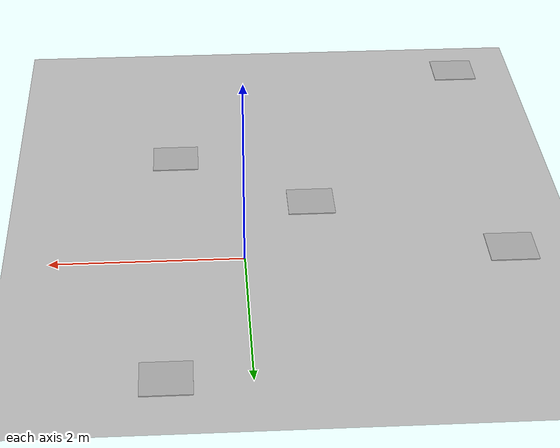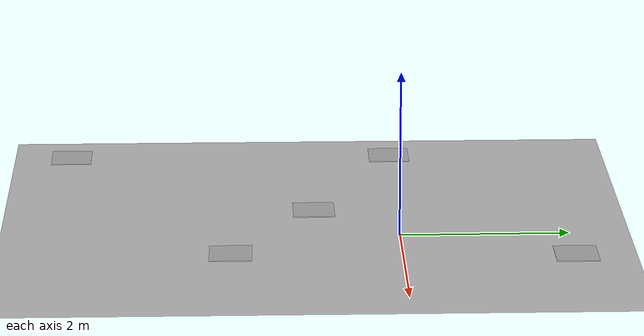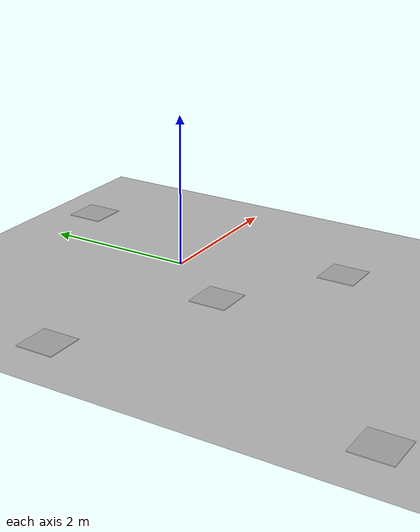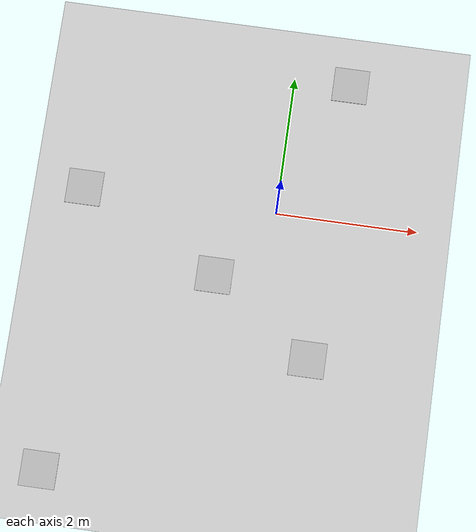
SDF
<sdf version="1.4">
 <world name="default">
  <light name="sun" type="directional">
   <pose>0 0 10 0 -0 0</pose>
   <diffuse>0.8 0.8 0.8 1</diffuse>
   <specular>0.2 0.2 0.2 1</specular>
   <attenuation>
    <range>1000</range>
    <constant>0.9</constant>
    <linear>0.01</linear>
    <quadratic>0.001</quadratic>
   </attenuation>
   <direction>-0.5 0.1 -0.9</direction>
  </light>
  <model name="ground_plane">
   <static>1</static>
   <link name="link">
    <collision name="collision">
     <geometry><plane><normal>0 0 1</normal><size>100 100</size></plane></geometry>
     <surface><friction><ode><mu>100</mu><mu2>50</mu2></ode></friction></surface>
    </collision>
    <visual name="visual">
     <cast_shadows>0</cast_shadows>
     <geometry><plane><normal>0 0 1</normal><size>100 100</size></plane></geometry>
     <material>
      <script><uri>file://media/materials/scripts/gazebo.material</uri><name>Gazebo/Grey</name></script>
     </material>
    </visual>
    <velocity_decay><linear>0</linear><angular>0</angular></velocity_decay>
   </link>
   <link name="camera_link">
    <pose>0 0 10.1 0 1.57 0</pose>
    <inertial>
     <mass>0.1</mass>
     <inertia><ixx>1</ixx><ixy>0</ixy><ixz>0</ixz><iyy>1</iyy><iyz>0</iyz><izz>1</izz></inertia>
    </inertial>
    <collision name="collision"><geometry><box><size>0.1 0.1 0.1</size></box></geometry></collision>
    <visual name="visual"><geometry><box><size>0.1 0.1 0.1</size></box></geometry></visual>
    <sensor name="camera" type="camera">
     <camera name="main_camera">
      <horizontal_fov>1.047</horizontal_fov>
      <image><width>640</width><height>480</height></image>
      <clip><near>0.1</near><far>100</far></clip>
     </camera>
     <plugin name="camera_control" filename="libgazebo_ros_camera.so">
      <cameraName>/main_camera</cameraName>
      <alwaysOn>true</alwaysOn>
      <updateRate>60</updateRate>
      <imageTopicName>/main/image_raw</imageTopicName>
      <cameraInfoTopicName>/main/camera_info</cameraInfoTopicName>
      <frameName>main_camera</frameName>
     </plugin>
     <always_on>1</always_on>
     <update_rate>30</update_rate>
     <visualize>0</visualize>
    </sensor>
    <velocity_decay><linear>0</linear><angular>0</angular></velocity_decay>
   </link>
   <joint name="arena_camera_link" type="revolute">
    <child>camera_link</child>
    <parent>link</parent>
    <axis><xyz>1 1 0</xyz><limit><lower>0</lower><upper>0</upper></limit></axis>
   </joint>
  </model>
  <physics type="ode">
   <max_step_size>0.001</max_step_size>
   <real_time_factor>1</real_time_factor>
   <real_time_update_rate>1000</real_time_update_rate>
   <gravity>0 0 -9.8</gravity>
  </physics>
  <scene><ambient>0.4 0.4 0.4 1</ambient><background>0.7 0.7 0.7 1</background><shadows>1</shadows></scene>
  <spherical_coordinates>
   <surface_model>EARTH_WGS84</surface_model>
   <latitude_deg>0</latitude_deg>
   <longitude_deg>0</longitude_deg>
   <elevation>0</elevation>
   <heading_deg>0</heading_deg>
  </spherical_coordinates>
  <model name="Marker0">
   <link name="link">
    <pose>0 0 0.4 0 1.57 0</pose>
    <inertial>
     <pose>0.4 0 0.25 0 -0 0</pose>
     <mass>1.5</mass>
     <inertia><ixx>1</ixx><ixy>0</ixy><ixz>0</ixz><iyy>1</iyy><iyz>0</iyz><izz>1</izz></inertia>
    </inertial>
    <collision name="collision">
     <pose>0 0 0.25 0 -0 0</pose>
     <geometry><box><size>0.1 0.5 0.5</size></box></geometry>
    </collision>
    <visual name="visual"><geometry><mesh><uri>model://marker0/meshes/Marker0.dae</uri></mesh></geometry></visual>
    <velocity_decay><linear>0</linear><angular>0</angular></velocity_decay>
   </link>
   <pose>0.44601 -2 -0.35 0 0.000796 0</pose>
   <static>0</static>
  </model>
  <model name="Marker0_0">
   <link name="link">
    <pose>0 0 0.4 0 1.57 0</pose>
    <inertial>
     <pose>0.4 0 0.25 0 -0 0</pose>
     <mass>1.5</mass>
     <inertia><ixx>1</ixx><ixy>0</ixy><ixz>0</ixz><iyy>1</iyy><iyz>0</iyz><izz>1</izz></inertia>
    </inertial>
    <collision name="collision">
     <pose>0 0 0.25 0 -0 0</pose>
     <geometry><box><size>0.1 0.5 0.5</size></box></geometry>
    </collision>
    <visual name="visual"><geometry><mesh><uri>model://marker0/meshes/Marker0.dae</uri></mesh></geometry></visual>
    <velocity_decay><linear>0</linear><angular>0</angular></velocity_decay>
   </link>
   <pose>-3.00028 0 -0.35 0 0.000796 0</pose>
   <static>0</static>
  </model>
  <model name="Marker0_1">
   <link name="link">
    <pose>0 0 0.4 0 1.57 0</pose>
    <inertial>
     <pose>0.4 0 0.25 0 -0 0</pose>
     <mass>1.5</mass>
     <inertia><ixx>1</ixx><ixy>0</ixy><ixz>0</ixz><iyy>1</iyy><iyz>0</iyz><izz>1</izz></inertia>
    </inertial>
    <collision name="collision">
     <pose>0 0 0.25 0 -0 0</pose>
     <geometry><box><size>0.1 0.5 0.5</size></box></geometry>
    </collision>
    <visual name="visual"><geometry><mesh><uri>model://marker0/meshes/Marker0.dae</uri></mesh></geometry></visual>
    <velocity_decay><linear>0</linear><angular>0</angular></velocity_decay>
   </link>
   <pose>-3.00028 -4 -0.35 0 0.000796 0</pose>
   <static>0</static>
  </model>
  <model name="Marker0_2">
   <link name="link">
    <pose>0 0 0.4 0 1.57 0</pose>
    <inertial>
     <pose>0.4 0 0.25 0 -0 0</pose>
     <mass>1.5</mass>
     <inertia><ixx>1</ixx><ixy>0</ixy><ixz>0</ixz><iyy>1</iyy><iyz>0</iyz><izz>1</izz></inertia>
    </inertial>
    <collision name="collision">
     <pose>0 0 0.25 0 -0 0</pose>
     <geometry><box><size>0.1 0.5 0.5</size></box></geometry>
    </collision>
    <visual name="visual"><geometry><mesh><uri>model://marker0/meshes/Marker0.dae</uri></mesh></geometry></visual>
    <velocity_decay><linear>0</linear><angular>0</angular></velocity_decay>
   </link>
   <pose>0.556114 2 -0.35 0 0.000796 0</pose>
   <static>0</static>
  </model>
  <model name="Marker0_3">
   <link name="link">
    <pose>0 0 0.4 0 1.57 0</pose>
    <inertial>
     <pose>0.4 0 0.25 0 -0 0</pose>
     <mass>1.5</mass>
     <inertia><ixx>1</ixx><ixy>0</ixy><ixz>0</ixz><iyy>1</iyy><iyz>0</iyz><izz>1</izz></inertia>
    </inertial>
    <collision name="collision">
     <pose>0 0 0.25 0 -0 0</pose>
     <geometry><box><size>0.1 0.5 0.5</size></box></geometry>
    </collision>
    <visual name="visual"><geometry><mesh><uri>model://marker0/meshes/Marker0.dae</uri></mesh></geometry></visual>
    <velocity_decay><linear>0</linear><angular>0</angular></velocity_decay>
   </link>
   <pose>-1.00028 -1 -0.35 0 0.000796 0</pose>
   <static>0</static>
  </model>
 </world>
</sdf>
